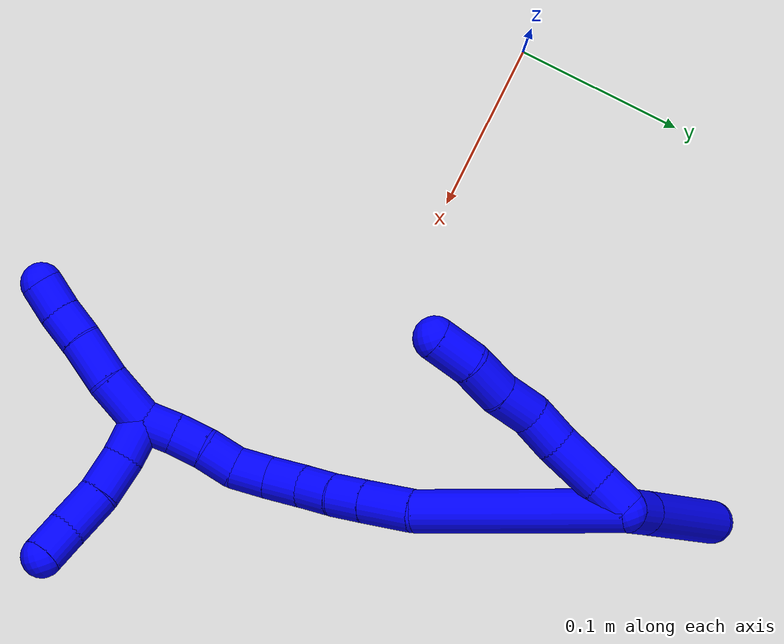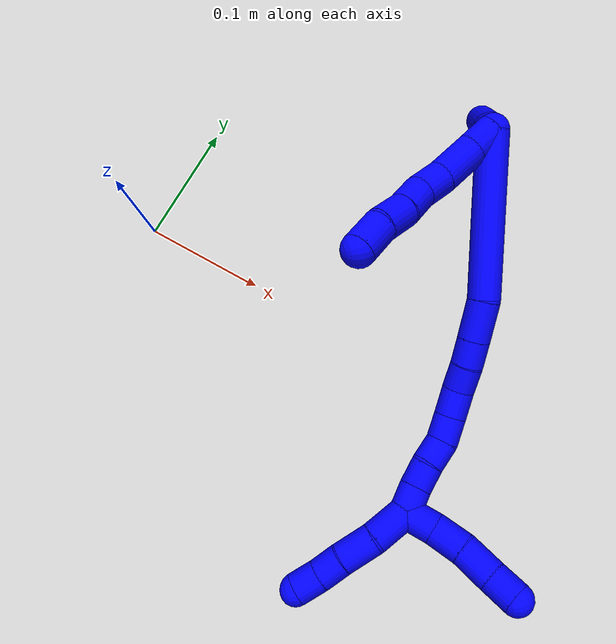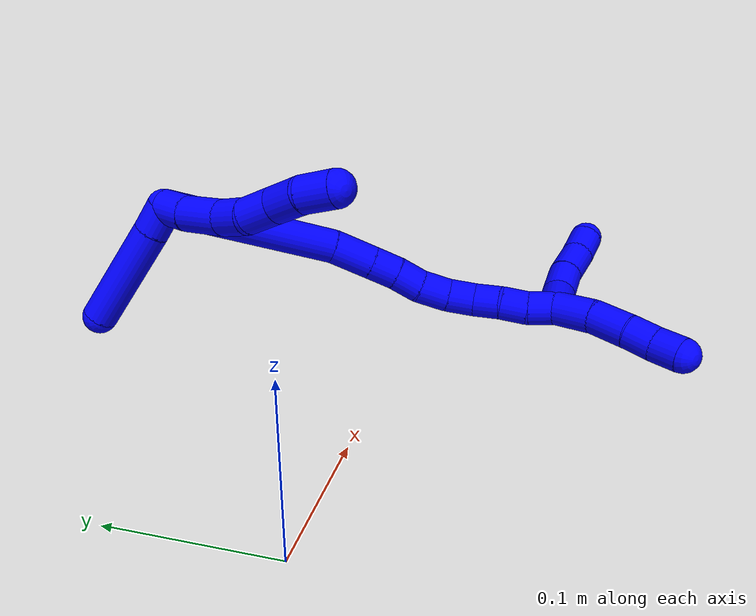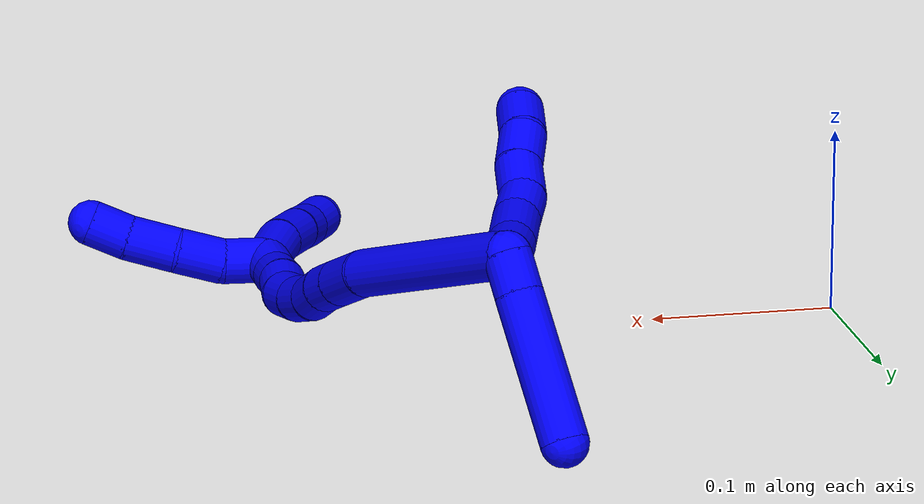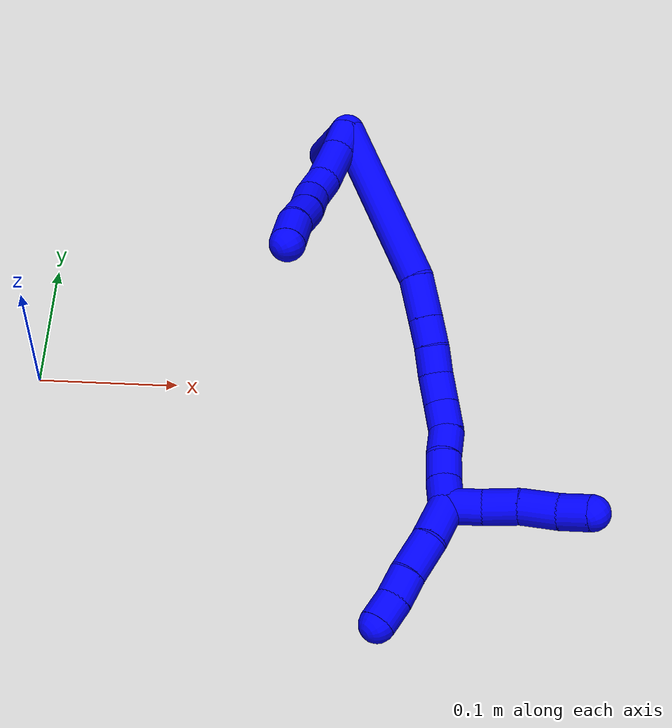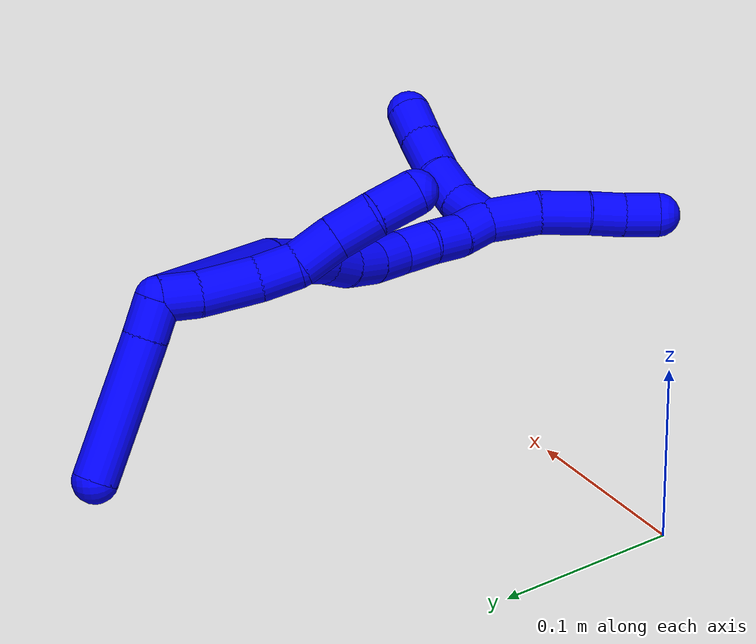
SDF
<sdf version="1.7">
 <world name="default">
  <model name="1">
   <static>0</static>
   <link name="1">
    <collision name="collision-cylinder-e_1_2_8">
     <pose>0.002035 -0.004633 -0.009463 2.68632 0.190786 0.783402</pose>
     <geometry><cylinder><radius>0.0125</radius><length>0.021461</length></cylinder></geometry>
     <surface>
      <friction><ode><mu>1.16</mu><mu2>1.16</mu2><slip1>0</slip1><slip2>0</slip2></ode></friction>
      <contact><ode><kp>1e+06</kp><kd>1</kd><max_vel>0</max_vel><min_depth>0.001</min_depth></ode></contact>
     </surface>
    </collision>
    <visual name="visual-cylinder-e_1_2_8">
     <pose>0.002035 -0.004633 -0.009463 2.68632 0.190786 0.783402</pose>
     <geometry><cylinder><radius>0.0125</radius><length>0.021461</length></cylinder></geometry>
     <material><ambient>0 0 1 1</ambient></material>
    </visual>
    <collision name="collision-cylinder-e_2_8_9">
     <pose>0.004875 -0.016772 -0.033515 2.66639 0.049042 0.201858</pose>
     <geometry><cylinder><radius>0.0125</radius><length>0.032855</length></cylinder></geometry>
     <surface>
      <friction><ode><mu>1.16</mu><mu2>1.16</mu2><slip1>0</slip1><slip2>0</slip2></ode></friction>
      <contact><ode><kp>1e+06</kp><kd>1</kd><max_vel>0</max_vel><min_depth>0.001</min_depth></ode></contact>
     </surface>
    </collision>
    <visual name="visual-cylinder-e_2_8_9">
     <pose>0.004875 -0.016772 -0.033515 2.66639 0.049042 0.201858</pose>
     <geometry><cylinder><radius>0.0125</radius><length>0.032855</length></cylinder></geometry>
     <material><ambient>0 0 1 1</ambient></material>
    </visual>
    <collision name="collision-cylinder-e_3_9_10">
     <pose>0.004526 -0.028588 -0.058263 2.74041 -0.104239 -0.502305</pose>
     <geometry><cylinder><radius>0.0125</radius><length>0.02219</length></cylinder></geometry>
     <surface>
      <friction><ode><mu>1.16</mu><mu2>1.16</mu2><slip1>0</slip1><slip2>0</slip2></ode></friction>
      <contact><ode><kp>1e+06</kp><kd>1</kd><max_vel>0</max_vel><min_depth>0.001</min_depth></ode></contact>
     </surface>
    </collision>
    <visual name="visual-cylinder-e_3_9_10">
     <pose>0.004526 -0.028588 -0.058263 2.74041 -0.104239 -0.502305</pose>
     <geometry><cylinder><radius>0.0125</radius><length>0.02219</length></cylinder></geometry>
     <material><ambient>0 0 1 1</ambient></material>
    </visual>
    <collision name="collision-cylinder-e_4_10_11">
     <pose>-0.000259 -0.039739 -0.077684 2.5054 -0.305439 -0.874527</pose>
     <geometry><cylinder><radius>0.0125</radius><length>0.024147</length></cylinder></geometry>
     <surface>
      <friction><ode><mu>1.16</mu><mu2>1.16</mu2><slip1>0</slip1><slip2>0</slip2></ode></friction>
      <contact><ode><kp>1e+06</kp><kd>1</kd><max_vel>0</max_vel><min_depth>0.001</min_depth></ode></contact>
     </surface>
    </collision>
    <visual name="visual-cylinder-e_4_10_11">
     <pose>-0.000259 -0.039739 -0.077684 2.5054 -0.305439 -0.874527</pose>
     <geometry><cylinder><radius>0.0125</radius><length>0.024147</length></cylinder></geometry>
     <material><ambient>0 0 1 1</ambient></material>
    </visual>
    <collision name="collision-cylinder-e_5_11_12">
     <pose>-0.00755 -0.051567 -0.097384 2.69586 -0.306459 -1.19634</pose>
     <geometry><cylinder><radius>0.0125</radius><length>0.024267</length></cylinder></geometry>
     <surface>
      <friction><ode><mu>1.16</mu><mu2>1.16</mu2><slip1>0</slip1><slip2>0</slip2></ode></friction>
      <contact><ode><kp>1e+06</kp><kd>1</kd><max_vel>0</max_vel><min_depth>0.001</min_depth></ode></contact>
     </surface>
    </collision>
    <visual name="visual-cylinder-e_5_11_12">
     <pose>-0.00755 -0.051567 -0.097384 2.69586 -0.306459 -1.19634</pose>
     <geometry><cylinder><radius>0.0125</radius><length>0.024267</length></cylinder></geometry>
     <material><ambient>0 0 1 1</ambient></material>
    </visual>
    <collision name="collision-cylinder-e_6_12_6">
     <pose>-0.013066 -0.063681 -0.117972 2.52949 -0.148493 -0.462395</pose>
     <geometry><cylinder><radius>0.0125</radius><length>0.025081</length></cylinder></geometry>
     <surface>
      <friction><ode><mu>1.16</mu><mu2>1.16</mu2><slip1>0</slip1><slip2>0</slip2></ode></friction>
      <contact><ode><kp>1e+06</kp><kd>1</kd><max_vel>0</max_vel><min_depth>0.001</min_depth></ode></contact>
     </surface>
    </collision>
    <visual name="visual-cylinder-e_6_12_6">
     <pose>-0.013066 -0.063681 -0.117972 2.52949 -0.148493 -0.462395</pose>
     <geometry><cylinder><radius>0.0125</radius><length>0.025081</length></cylinder></geometry>
     <material><ambient>0 0 1 1</ambient></material>
    </visual>
    <collision name="collision-cylinder-e_1_2_13">
     <pose>0.008269 0.00555 0.003645 -0.98965 0.89422 -0.506369</pose>
     <geometry><cylinder><radius>0.0125</radius><length>0.021211</length></cylinder></geometry>
     <surface>
      <friction><ode><mu>1.16</mu><mu2>1.16</mu2><slip1>0</slip1><slip2>0</slip2></ode></friction>
      <contact><ode><kp>1e+06</kp><kd>1</kd><max_vel>0</max_vel><min_depth>0.001</min_depth></ode></contact>
     </surface>
    </collision>
    <visual name="visual-cylinder-e_1_2_13">
     <pose>0.008269 0.00555 0.003645 -0.98965 0.89422 -0.506369</pose>
     <geometry><cylinder><radius>0.0125</radius><length>0.021211</length></cylinder></geometry>
     <material><ambient>0 0 1 1</ambient></material>
    </visual>
    <collision name="collision-cylinder-e_2_13_5">
     <pose>0.046329 0.032553 0.021582 -0.983149 0.857502 -0.480048</pose>
     <geometry><cylinder><radius>0.0125</radius><length>0.078789</length></cylinder></geometry>
     <surface>
      <friction><ode><mu>1.16</mu><mu2>1.16</mu2><slip1>0</slip1><slip2>0</slip2></ode></friction>
      <contact><ode><kp>1e+06</kp><kd>1</kd><max_vel>0</max_vel><min_depth>0.001</min_depth></ode></contact>
     </surface>
    </collision>
    <visual name="visual-cylinder-e_2_13_5">
     <pose>0.046329 0.032553 0.021582 -0.983149 0.857502 -0.480048</pose>
     <geometry><cylinder><radius>0.0125</radius><length>0.078789</length></cylinder></geometry>
     <material><ambient>0 0 1 1</ambient></material>
    </visual>
    <collision name="collision-cylinder-e_1_2_14">
     <pose>0.024619 -0.054353 -0.016602 1.86724 0.408788 0.546123</pose>
     <geometry><cylinder><radius>0.0125</radius><length>0.12387</length></cylinder></geometry>
     <surface>
      <friction><ode><mu>1.16</mu><mu2>1.16</mu2><slip1>0</slip1><slip2>0</slip2></ode></friction>
      <contact><ode><kp>1e+06</kp><kd>1</kd><max_vel>0</max_vel><min_depth>0.001</min_depth></ode></contact>
     </surface>
    </collision>
    <visual name="visual-cylinder-e_1_2_14">
     <pose>0.024619 -0.054353 -0.016602 1.86724 0.408788 0.546123</pose>
     <geometry><cylinder><radius>0.0125</radius><length>0.12387</length></cylinder></geometry>
     <material><ambient>0 0 1 1</ambient></material>
    </visual>
    <collision name="collision-cylinder-e_2_14_15">
     <pose>0.057219 -0.120459 -0.039432 2.05811 0.540408 0.862694</pose>
     <geometry><cylinder><radius>0.0125</radius><length>0.031024</length></cylinder></geometry>
     <surface>
      <friction><ode><mu>1.16</mu><mu2>1.16</mu2><slip1>0</slip1><slip2>0</slip2></ode></friction>
      <contact><ode><kp>1e+06</kp><kd>1</kd><max_vel>0</max_vel><min_depth>0.001</min_depth></ode></contact>
     </surface>
    </collision>
    <visual name="visual-cylinder-e_2_14_15">
     <pose>0.057219 -0.120459 -0.039432 2.05811 0.540408 0.862694</pose>
     <geometry><cylinder><radius>0.0125</radius><length>0.031024</length></cylinder></geometry>
     <material><ambient>0 0 1 1</ambient></material>
    </visual>
    <collision name="collision-cylinder-e_3_15_16">
     <pose>0.070492 -0.139904 -0.049865 2.07109 0.543174 0.878059</pose>
     <geometry><cylinder><radius>0.0125</radius><length>0.020479</length></cylinder></geometry>
     <surface>
      <friction><ode><mu>1.16</mu><mu2>1.16</mu2><slip1>0</slip1><slip2>0</slip2></ode></friction>
      <contact><ode><kp>1e+06</kp><kd>1</kd><max_vel>0</max_vel><min_depth>0.001</min_depth></ode></contact>
     </surface>
    </collision>
    <visual name="visual-cylinder-e_3_15_16">
     <pose>0.070492 -0.139904 -0.049865 2.07109 0.543174 0.878059</pose>
     <geometry><cylinder><radius>0.0125</radius><length>0.020479</length></cylinder></geometry>
     <material><ambient>0 0 1 1</ambient></material>
    </visual>
    <collision name="collision-cylinder-e_4_16_17">
     <pose>0.08193 -0.154621 -0.05848 2.13131 0.637602 1.07621</pose>
     <geometry><cylinder><radius>0.0125</radius><length>0.020648</length></cylinder></geometry>
     <surface>
      <friction><ode><mu>1.16</mu><mu2>1.16</mu2><slip1>0</slip1><slip2>0</slip2></ode></friction>
      <contact><ode><kp>1e+06</kp><kd>1</kd><max_vel>0</max_vel><min_depth>0.001</min_depth></ode></contact>
     </surface>
    </collision>
    <visual name="visual-cylinder-e_4_16_17">
     <pose>0.08193 -0.154621 -0.05848 2.13131 0.637602 1.07621</pose>
     <geometry><cylinder><radius>0.0125</radius><length>0.020648</length></cylinder></geometry>
     <material><ambient>0 0 1 1</ambient></material>
    </visual>
    <collision name="collision-cylinder-e_5_17_18">
     <pose>0.0927 -0.170193 -0.068293 2.13457 0.42898 0.753154</pose>
     <geometry><cylinder><radius>0.0125</radius><length>0.022237</length></cylinder></geometry>
     <surface>
      <friction><ode><mu>1.16</mu><mu2>1.16</mu2><slip1>0</slip1><slip2>0</slip2></ode></friction>
      <contact><ode><kp>1e+06</kp><kd>1</kd><max_vel>0</max_vel><min_depth>0.001</min_depth></ode></contact>
     </surface>
    </collision>
    <visual name="visual-cylinder-e_5_17_18">
     <pose>0.0927 -0.170193 -0.068293 2.13457 0.42898 0.753154</pose>
     <geometry><cylinder><radius>0.0125</radius><length>0.022237</length></cylinder></geometry>
     <material><ambient>0 0 1 1</ambient></material>
    </visual>
    <collision name="collision-cylinder-e_6_18_19">
     <pose>0.100139 -0.187056 -0.07951 2.18089 0.270564 0.511031</pose>
     <geometry><cylinder><radius>0.0125</radius><length>0.02106</length></cylinder></geometry>
     <surface>
      <friction><ode><mu>1.16</mu><mu2>1.16</mu2><slip1>0</slip1><slip2>0</slip2></ode></friction>
      <contact><ode><kp>1e+06</kp><kd>1</kd><max_vel>0</max_vel><min_depth>0.001</min_depth></ode></contact>
     </surface>
    </collision>
    <visual name="visual-cylinder-e_6_18_19">
     <pose>0.100139 -0.187056 -0.07951 2.18089 0.270564 0.511031</pose>
     <geometry><cylinder><radius>0.0125</radius><length>0.02106</length></cylinder></geometry>
     <material><ambient>0 0 1 1</ambient></material>
    </visual>
    <collision name="collision-cylinder-e_7_19_20">
     <pose>0.103909 -0.201672 -0.093362 2.47687 0.093281 0.268813</pose>
     <geometry><cylinder><radius>0.0125</radius><length>0.020517</length></cylinder></geometry>
     <surface>
      <friction><ode><mu>1.16</mu><mu2>1.16</mu2><slip1>0</slip1><slip2>0</slip2></ode></friction>
      <contact><ode><kp>1e+06</kp><kd>1</kd><max_vel>0</max_vel><min_depth>0.001</min_depth></ode></contact>
     </surface>
    </collision>
    <visual name="visual-cylinder-e_7_19_20">
     <pose>0.103909 -0.201672 -0.093362 2.47687 0.093281 0.268813</pose>
     <geometry><cylinder><radius>0.0125</radius><length>0.020517</length></cylinder></geometry>
     <material><ambient>0 0 1 1</ambient></material>
    </visual>
    <collision name="collision-cylinder-e_8_20_21">
     <pose>0.107209 -0.214868 -0.108334 2.35887 0.235346 0.558036</pose>
     <geometry><cylinder><radius>0.0125</radius><length>0.020109</length></cylinder></geometry>
     <surface>
      <friction><ode><mu>1.16</mu><mu2>1.16</mu2><slip1>0</slip1><slip2>0</slip2></ode></friction>
      <contact><ode><kp>1e+06</kp><kd>1</kd><max_vel>0</max_vel><min_depth>0.001</min_depth></ode></contact>
     </surface>
    </collision>
    <visual name="visual-cylinder-e_8_20_21">
     <pose>0.107209 -0.214868 -0.108334 2.35887 0.235346 0.558036</pose>
     <geometry><cylinder><radius>0.0125</radius><length>0.020109</length></cylinder></geometry>
     <material><ambient>0 0 1 1</ambient></material>
    </visual>
    <collision name="collision-cylinder-e_9_21_1">
     <pose>0.109813 -0.229248 -0.121935 2.2986 0.025942 0.057845</pose>
     <geometry><cylinder><radius>0.0125</radius><length>0.020057</length></cylinder></geometry>
     <surface>
      <friction><ode><mu>1.16</mu><mu2>1.16</mu2><slip1>0</slip1><slip2>0</slip2></ode></friction>
      <contact><ode><kp>1e+06</kp><kd>1</kd><max_vel>0</max_vel><min_depth>0.001</min_depth></ode></contact>
     </surface>
    </collision>
    <visual name="visual-cylinder-e_9_21_1">
     <pose>0.109813 -0.229248 -0.121935 2.2986 0.025942 0.057845</pose>
     <geometry><cylinder><radius>0.0125</radius><length>0.020057</length></cylinder></geometry>
     <material><ambient>0 0 1 1</ambient></material>
    </visual>
    <collision name="collision-cylinder-e_1_1_22">
     <pose>0.109212 -0.245689 -0.12028 0.821961 -0.070352 -0.030669</pose>
     <geometry><cylinder><radius>0.0125</radius><length>0.024515</length></cylinder></geometry>
     <surface>
      <friction><ode><mu>1.16</mu><mu2>1.16</mu2><slip1>0</slip1><slip2>0</slip2></ode></friction>
      <contact><ode><kp>1e+06</kp><kd>1</kd><max_vel>0</max_vel><min_depth>0.001</min_depth></ode></contact>
     </surface>
    </collision>
    <visual name="visual-cylinder-e_1_1_22">
     <pose>0.109212 -0.245689 -0.12028 0.821961 -0.070352 -0.030669</pose>
     <geometry><cylinder><radius>0.0125</radius><length>0.024515</length></cylinder></geometry>
     <material><ambient>0 0 1 1</ambient></material>
    </visual>
    <collision name="collision-cylinder-e_2_22_23">
     <pose>0.10442 -0.26473 -0.10475 0.950407 -0.307103 -0.158932</pose>
     <geometry><cylinder><radius>0.0125</radius><length>0.026004</length></cylinder></geometry>
     <surface>
      <friction><ode><mu>1.16</mu><mu2>1.16</mu2><slip1>0</slip1><slip2>0</slip2></ode></friction>
      <contact><ode><kp>1e+06</kp><kd>1</kd><max_vel>0</max_vel><min_depth>0.001</min_depth></ode></contact>
     </surface>
    </collision>
    <visual name="visual-cylinder-e_2_22_23">
     <pose>0.10442 -0.26473 -0.10475 0.950407 -0.307103 -0.158932</pose>
     <geometry><cylinder><radius>0.0125</radius><length>0.026004</length></cylinder></geometry>
     <material><ambient>0 0 1 1</ambient></material>
    </visual>
    <collision name="collision-cylinder-e_3_23_24">
     <pose>0.097017 -0.286657 -0.091634 1.10788 -0.256536 -0.159216</pose>
     <geometry><cylinder><radius>0.0125</radius><length>0.02737</length></cylinder></geometry>
     <surface>
      <friction><ode><mu>1.16</mu><mu2>1.16</mu2><slip1>0</slip1><slip2>0</slip2></ode></friction>
      <contact><ode><kp>1e+06</kp><kd>1</kd><max_vel>0</max_vel><min_depth>0.001</min_depth></ode></contact>
     </surface>
    </collision>
    <visual name="visual-cylinder-e_3_23_24">
     <pose>0.097017 -0.286657 -0.091634 1.10788 -0.256536 -0.159216</pose>
     <geometry><cylinder><radius>0.0125</radius><length>0.02737</length></cylinder></geometry>
     <material><ambient>0 0 1 1</ambient></material>
    </visual>
    <collision name="collision-cylinder-e_4_24_4">
     <pose>0.08925 -0.307631 -0.081203 1.11111 -0.39893 -0.249676</pose>
     <geometry><cylinder><radius>0.0125</radius><length>0.022112</length></cylinder></geometry>
     <surface>
      <friction><ode><mu>1.16</mu><mu2>1.16</mu2><slip1>0</slip1><slip2>0</slip2></ode></friction>
      <contact><ode><kp>1e+06</kp><kd>1</kd><max_vel>0</max_vel><min_depth>0.001</min_depth></ode></contact>
     </surface>
    </collision>
    <visual name="visual-cylinder-e_4_24_4">
     <pose>0.08925 -0.307631 -0.081203 1.11111 -0.39893 -0.249676</pose>
     <geometry><cylinder><radius>0.0125</radius><length>0.022112</length></cylinder></geometry>
     <material><ambient>0 0 1 1</ambient></material>
    </visual>
    <collision name="collision-cylinder-e_1_1_25">
     <pose>0.111312 -0.242227 -0.142977 2.77648 0.0803 0.428524</pose>
     <geometry><cylinder><radius>0.0125</radius><length>0.030874</length></cylinder></geometry>
     <surface>
      <friction><ode><mu>1.16</mu><mu2>1.16</mu2><slip1>0</slip1><slip2>0</slip2></ode></friction>
      <contact><ode><kp>1e+06</kp><kd>1</kd><max_vel>0</max_vel><min_depth>0.001</min_depth></ode></contact>
     </surface>
    </collision>
    <visual name="visual-cylinder-e_1_1_25">
     <pose>0.111312 -0.242227 -0.142977 2.77648 0.0803 0.428524</pose>
     <geometry><cylinder><radius>0.0125</radius><length>0.030874</length></cylinder></geometry>
     <material><ambient>0 0 1 1</ambient></material>
    </visual>
    <collision name="collision-cylinder-e_2_25_26">
     <pose>0.115529 -0.251141 -0.170745 2.89162 0.212245 1.40648</pose>
     <geometry><cylinder><radius>0.0125</radius><length>0.028285</length></cylinder></geometry>
     <surface>
      <friction><ode><mu>1.16</mu><mu2>1.16</mu2><slip1>0</slip1><slip2>0</slip2></ode></friction>
      <contact><ode><kp>1e+06</kp><kd>1</kd><max_vel>0</max_vel><min_depth>0.001</min_depth></ode></contact>
     </surface>
    </collision>
    <visual name="visual-cylinder-e_2_25_26">
     <pose>0.115529 -0.251141 -0.170745 2.89162 0.212245 1.40648</pose>
     <geometry><cylinder><radius>0.0125</radius><length>0.028285</length></cylinder></geometry>
     <material><ambient>0 0 1 1</ambient></material>
    </visual>
    <collision name="collision-cylinder-e_3_26_27">
     <pose>0.121505 -0.257607 -0.1935 2.82692 0.29557 1.50724</pose>
     <geometry><cylinder><radius>0.0125</radius><length>0.020578</length></cylinder></geometry>
     <surface>
      <friction><ode><mu>1.16</mu><mu2>1.16</mu2><slip1>0</slip1><slip2>0</slip2></ode></friction>
      <contact><ode><kp>1e+06</kp><kd>1</kd><max_vel>0</max_vel><min_depth>0.001</min_depth></ode></contact>
     </surface>
    </collision>
    <visual name="visual-cylinder-e_3_26_27">
     <pose>0.121505 -0.257607 -0.1935 2.82692 0.29557 1.50724</pose>
     <geometry><cylinder><radius>0.0125</radius><length>0.020578</length></cylinder></geometry>
     <material><ambient>0 0 1 1</ambient></material>
    </visual>
    <collision name="collision-cylinder-e_4_27_3">
     <pose>0.126228 -0.262865 -0.212595 2.91831 0.171185 1.3065</pose>
     <geometry><cylinder><radius>0.0125</radius><length>0.020264</length></cylinder></geometry>
     <surface>
      <friction><ode><mu>1.16</mu><mu2>1.16</mu2><slip1>0</slip1><slip2>0</slip2></ode></friction>
      <contact><ode><kp>1e+06</kp><kd>1</kd><max_vel>0</max_vel><min_depth>0.001</min_depth></ode></contact>
     </surface>
    </collision>
    <visual name="visual-cylinder-e_4_27_3">
     <pose>0.126228 -0.262865 -0.212595 2.91831 0.171185 1.3065</pose>
     <geometry><cylinder><radius>0.0125</radius><length>0.020264</length></cylinder></geometry>
     <material><ambient>0 0 1 1</ambient></material>
    </visual>
    <collision name="collision-sphere-3">
     <pose>0.127954 -0.265075 -0.222331 0 -0 0</pose>
     <geometry><sphere><radius>0.0125</radius></sphere></geometry>
     <surface>
      <friction><ode><mu>1.16</mu><mu2>1.16</mu2><slip1>0</slip1><slip2>0</slip2></ode></friction>
      <contact><ode><kp>1e+06</kp><kd>1</kd><max_vel>0</max_vel><min_depth>0.001</min_depth></ode></contact>
     </surface>
    </collision>
    <visual name="visual-sphere-3">
     <pose>0.127954 -0.265075 -0.222331 0 -0 0</pose>
     <geometry><sphere><radius>0.0125</radius></sphere></geometry>
     <material><ambient>0 0 1 1</ambient></material>
    </visual>
    <collision name="collision-sphere-27">
     <pose>0.124502 -0.260654 -0.202859 0 -0 0</pose>
     <geometry><sphere><radius>0.0125</radius></sphere></geometry>
     <surface>
      <friction><ode><mu>1.16</mu><mu2>1.16</mu2><slip1>0</slip1><slip2>0</slip2></ode></friction>
      <contact><ode><kp>1e+06</kp><kd>1</kd><max_vel>0</max_vel><min_depth>0.001</min_depth></ode></contact>
     </surface>
    </collision>
    <visual name="visual-sphere-27">
     <pose>0.124502 -0.260654 -0.202859 0 -0 0</pose>
     <geometry><sphere><radius>0.0125</radius></sphere></geometry>
     <material><ambient>0 0 1 1</ambient></material>
    </visual>
    <collision name="collision-sphere-26">
     <pose>0.118508 -0.254561 -0.18414 0 -0 0</pose>
     <geometry><sphere><radius>0.0125</radius></sphere></geometry>
     <surface>
      <friction><ode><mu>1.16</mu><mu2>1.16</mu2><slip1>0</slip1><slip2>0</slip2></ode></friction>
      <contact><ode><kp>1e+06</kp><kd>1</kd><max_vel>0</max_vel><min_depth>0.001</min_depth></ode></contact>
     </surface>
    </collision>
    <visual name="visual-sphere-26">
     <pose>0.118508 -0.254561 -0.18414 0 -0 0</pose>
     <geometry><sphere><radius>0.0125</radius></sphere></geometry>
     <material><ambient>0 0 1 1</ambient></material>
    </visual>
    <collision name="collision-sphere-25">
     <pose>0.11255 -0.247721 -0.15735 0 -0 0</pose>
     <geometry><sphere><radius>0.0125</radius></sphere></geometry>
     <surface>
      <friction><ode><mu>1.16</mu><mu2>1.16</mu2><slip1>0</slip1><slip2>0</slip2></ode></friction>
      <contact><ode><kp>1e+06</kp><kd>1</kd><max_vel>0</max_vel><min_depth>0.001</min_depth></ode></contact>
     </surface>
    </collision>
    <visual name="visual-sphere-25">
     <pose>0.11255 -0.247721 -0.15735 0 -0 0</pose>
     <geometry><sphere><radius>0.0125</radius></sphere></geometry>
     <material><ambient>0 0 1 1</ambient></material>
    </visual>
    <collision name="collision-sphere-4">
     <pose>0.084956 -0.316761 -0.076683 0 -0 0</pose>
     <geometry><sphere><radius>0.0125</radius></sphere></geometry>
     <surface>
      <friction><ode><mu>1.16</mu><mu2>1.16</mu2><slip1>0</slip1><slip2>0</slip2></ode></friction>
      <contact><ode><kp>1e+06</kp><kd>1</kd><max_vel>0</max_vel><min_depth>0.001</min_depth></ode></contact>
     </surface>
    </collision>
    <visual name="visual-sphere-4">
     <pose>0.084956 -0.316761 -0.076683 0 -0 0</pose>
     <geometry><sphere><radius>0.0125</radius></sphere></geometry>
     <material><ambient>0 0 1 1</ambient></material>
    </visual>
    <collision name="collision-sphere-24">
     <pose>0.093545 -0.298501 -0.085723 0 -0 0</pose>
     <geometry><sphere><radius>0.0125</radius></sphere></geometry>
     <surface>
      <friction><ode><mu>1.16</mu><mu2>1.16</mu2><slip1>0</slip1><slip2>0</slip2></ode></friction>
      <contact><ode><kp>1e+06</kp><kd>1</kd><max_vel>0</max_vel><min_depth>0.001</min_depth></ode></contact>
     </surface>
    </collision>
    <visual name="visual-sphere-24">
     <pose>0.093545 -0.298501 -0.085723 0 -0 0</pose>
     <geometry><sphere><radius>0.0125</radius></sphere></geometry>
     <material><ambient>0 0 1 1</ambient></material>
    </visual>
    <collision name="collision-sphere-23">
     <pose>0.100489 -0.274814 -0.097545 0 -0 0</pose>
     <geometry><sphere><radius>0.0125</radius></sphere></geometry>
     <surface>
      <friction><ode><mu>1.16</mu><mu2>1.16</mu2><slip1>0</slip1><slip2>0</slip2></ode></friction>
      <contact><ode><kp>1e+06</kp><kd>1</kd><max_vel>0</max_vel><min_depth>0.001</min_depth></ode></contact>
     </surface>
    </collision>
    <visual name="visual-sphere-23">
     <pose>0.100489 -0.274814 -0.097545 0 -0 0</pose>
     <geometry><sphere><radius>0.0125</radius></sphere></geometry>
     <material><ambient>0 0 1 1</ambient></material>
    </visual>
    <collision name="collision-sphere-22">
     <pose>0.10835 -0.254645 -0.111956 0 -0 0</pose>
     <geometry><sphere><radius>0.0125</radius></sphere></geometry>
     <surface>
      <friction><ode><mu>1.16</mu><mu2>1.16</mu2><slip1>0</slip1><slip2>0</slip2></ode></friction>
      <contact><ode><kp>1e+06</kp><kd>1</kd><max_vel>0</max_vel><min_depth>0.001</min_depth></ode></contact>
     </surface>
    </collision>
    <visual name="visual-sphere-22">
     <pose>0.10835 -0.254645 -0.111956 0 -0 0</pose>
     <geometry><sphere><radius>0.0125</radius></sphere></geometry>
     <material><ambient>0 0 1 1</ambient></material>
    </visual>
    <collision name="collision-sphere-1">
     <pose>0.110074 -0.236733 -0.128604 0 -0 0</pose>
     <geometry><sphere><radius>0.0125</radius></sphere></geometry>
     <surface>
      <friction><ode><mu>1.16</mu><mu2>1.16</mu2><slip1>0</slip1><slip2>0</slip2></ode></friction>
      <contact><ode><kp>1e+06</kp><kd>1</kd><max_vel>0</max_vel><min_depth>0.001</min_depth></ode></contact>
     </surface>
    </collision>
    <visual name="visual-sphere-1">
     <pose>0.110074 -0.236733 -0.128604 0 -0 0</pose>
     <geometry><sphere><radius>0.0125</radius></sphere></geometry>
     <material><ambient>0 0 1 1</ambient></material>
    </visual>
    <collision name="collision-sphere-21">
     <pose>0.109553 -0.221763 -0.115266 0 -0 0</pose>
     <geometry><sphere><radius>0.0125</radius></sphere></geometry>
     <surface>
      <friction><ode><mu>1.16</mu><mu2>1.16</mu2><slip1>0</slip1><slip2>0</slip2></ode></friction>
      <contact><ode><kp>1e+06</kp><kd>1</kd><max_vel>0</max_vel><min_depth>0.001</min_depth></ode></contact>
     </surface>
    </collision>
    <visual name="visual-sphere-21">
     <pose>0.109553 -0.221763 -0.115266 0 -0 0</pose>
     <geometry><sphere><radius>0.0125</radius></sphere></geometry>
     <material><ambient>0 0 1 1</ambient></material>
    </visual>
    <collision name="collision-sphere-12">
     <pose>-0.011211 -0.056554 -0.107821 0 -0 0</pose>
     <geometry><sphere><radius>0.0125</radius></sphere></geometry>
     <surface>
      <friction><ode><mu>1.16</mu><mu2>1.16</mu2><slip1>0</slip1><slip2>0</slip2></ode></friction>
      <contact><ode><kp>1e+06</kp><kd>1</kd><max_vel>0</max_vel><min_depth>0.001</min_depth></ode></contact>
     </surface>
    </collision>
    <visual name="visual-sphere-12">
     <pose>-0.011211 -0.056554 -0.107821 0 -0 0</pose>
     <geometry><sphere><radius>0.0125</radius></sphere></geometry>
     <material><ambient>0 0 1 1</ambient></material>
    </visual>
    <collision name="collision-sphere-11">
     <pose>-0.00389 -0.04658 -0.086946 0 -0 0</pose>
     <geometry><sphere><radius>0.0125</radius></sphere></geometry>
     <surface>
      <friction><ode><mu>1.16</mu><mu2>1.16</mu2><slip1>0</slip1><slip2>0</slip2></ode></friction>
      <contact><ode><kp>1e+06</kp><kd>1</kd><max_vel>0</max_vel><min_depth>0.001</min_depth></ode></contact>
     </surface>
    </collision>
    <visual name="visual-sphere-11">
     <pose>-0.00389 -0.04658 -0.086946 0 -0 0</pose>
     <geometry><sphere><radius>0.0125</radius></sphere></geometry>
     <material><ambient>0 0 1 1</ambient></material>
    </visual>
    <collision name="collision-sphere-10">
     <pose>0.003371 -0.032897 -0.068422 0 -0 0</pose>
     <geometry><sphere><radius>0.0125</radius></sphere></geometry>
     <surface>
      <friction><ode><mu>1.16</mu><mu2>1.16</mu2><slip1>0</slip1><slip2>0</slip2></ode></friction>
      <contact><ode><kp>1e+06</kp><kd>1</kd><max_vel>0</max_vel><min_depth>0.001</min_depth></ode></contact>
     </surface>
    </collision>
    <visual name="visual-sphere-10">
     <pose>0.003371 -0.032897 -0.068422 0 -0 0</pose>
     <geometry><sphere><radius>0.0125</radius></sphere></geometry>
     <material><ambient>0 0 1 1</ambient></material>
    </visual>
    <collision name="collision-sphere-9">
     <pose>0.00568 -0.024279 -0.048105 0 -0 0</pose>
     <geometry><sphere><radius>0.0125</radius></sphere></geometry>
     <surface>
      <friction><ode><mu>1.16</mu><mu2>1.16</mu2><slip1>0</slip1><slip2>0</slip2></ode></friction>
      <contact><ode><kp>1e+06</kp><kd>1</kd><max_vel>0</max_vel><min_depth>0.001</min_depth></ode></contact>
     </surface>
    </collision>
    <visual name="visual-sphere-9">
     <pose>0.00568 -0.024279 -0.048105 0 -0 0</pose>
     <geometry><sphere><radius>0.0125</radius></sphere></geometry>
     <material><ambient>0 0 1 1</ambient></material>
    </visual>
    <collision name="collision-sphere-2">
     <geometry><sphere><radius>0.0125</radius></sphere></geometry>
     <surface>
      <friction><ode><mu>1.16</mu><mu2>1.16</mu2><slip1>0</slip1><slip2>0</slip2></ode></friction>
      <contact><ode><kp>1e+06</kp><kd>1</kd><max_vel>0</max_vel><min_depth>0.001</min_depth></ode></contact>
     </surface>
    </collision>
    <visual name="visual-sphere-2">
     <geometry><sphere><radius>0.0125</radius></sphere></geometry>
     <material><ambient>0 0 1 1</ambient></material>
    </visual>
    <collision name="collision-sphere-19">
     <pose>0.102953 -0.195372 -0.085323 0 -0 0</pose>
     <geometry><sphere><radius>0.0125</radius></sphere></geometry>
     <surface>
      <friction><ode><mu>1.16</mu><mu2>1.16</mu2><slip1>0</slip1><slip2>0</slip2></ode></friction>
      <contact><ode><kp>1e+06</kp><kd>1</kd><max_vel>0</max_vel><min_depth>0.001</min_depth></ode></contact>
     </surface>
    </collision>
    <visual name="visual-sphere-19">
     <pose>0.102953 -0.195372 -0.085323 0 -0 0</pose>
     <geometry><sphere><radius>0.0125</radius></sphere></geometry>
     <material><ambient>0 0 1 1</ambient></material>
    </visual>
    <collision name="collision-sphere-8">
     <pose>0.00407 -0.009265 -0.018925 0 -0 0</pose>
     <geometry><sphere><radius>0.0125</radius></sphere></geometry>
     <surface>
      <friction><ode><mu>1.16</mu><mu2>1.16</mu2><slip1>0</slip1><slip2>0</slip2></ode></friction>
      <contact><ode><kp>1e+06</kp><kd>1</kd><max_vel>0</max_vel><min_depth>0.001</min_depth></ode></contact>
     </surface>
    </collision>
    <visual name="visual-sphere-8">
     <pose>0.00407 -0.009265 -0.018925 0 -0 0</pose>
     <geometry><sphere><radius>0.0125</radius></sphere></geometry>
     <material><ambient>0 0 1 1</ambient></material>
    </visual>
    <collision name="collision-sphere-6">
     <pose>-0.014921 -0.070807 -0.128122 0 -0 0</pose>
     <geometry><sphere><radius>0.0125</radius></sphere></geometry>
     <surface>
      <friction><ode><mu>1.16</mu><mu2>1.16</mu2><slip1>0</slip1><slip2>0</slip2></ode></friction>
      <contact><ode><kp>1e+06</kp><kd>1</kd><max_vel>0</max_vel><min_depth>0.001</min_depth></ode></contact>
     </surface>
    </collision>
    <visual name="visual-sphere-6">
     <pose>-0.014921 -0.070807 -0.128122 0 -0 0</pose>
     <geometry><sphere><radius>0.0125</radius></sphere></geometry>
     <material><ambient>0 0 1 1</ambient></material>
    </visual>
    <collision name="collision-sphere-13">
     <pose>0.016539 0.011101 0.007291 0 -0 0</pose>
     <geometry><sphere><radius>0.0125</radius></sphere></geometry>
     <surface>
      <friction><ode><mu>1.16</mu><mu2>1.16</mu2><slip1>0</slip1><slip2>0</slip2></ode></friction>
      <contact><ode><kp>1e+06</kp><kd>1</kd><max_vel>0</max_vel><min_depth>0.001</min_depth></ode></contact>
     </surface>
    </collision>
    <visual name="visual-sphere-13">
     <pose>0.016539 0.011101 0.007291 0 -0 0</pose>
     <geometry><sphere><radius>0.0125</radius></sphere></geometry>
     <material><ambient>0 0 1 1</ambient></material>
    </visual>
    <collision name="collision-sphere-5">
     <pose>0.07612 0.054006 0.035873 0 -0 0</pose>
     <geometry><sphere><radius>0.0125</radius></sphere></geometry>
     <surface>
      <friction><ode><mu>1.16</mu><mu2>1.16</mu2><slip1>0</slip1><slip2>0</slip2></ode></friction>
      <contact><ode><kp>1e+06</kp><kd>1</kd><max_vel>0</max_vel><min_depth>0.001</min_depth></ode></contact>
     </surface>
    </collision>
    <visual name="visual-sphere-5">
     <pose>0.07612 0.054006 0.035873 0 -0 0</pose>
     <geometry><sphere><radius>0.0125</radius></sphere></geometry>
     <material><ambient>0 0 1 1</ambient></material>
    </visual>
    <collision name="collision-sphere-14">
     <pose>0.049238 -0.108706 -0.033203 0 -0 0</pose>
     <geometry><sphere><radius>0.0125</radius></sphere></geometry>
     <surface>
      <friction><ode><mu>1.16</mu><mu2>1.16</mu2><slip1>0</slip1><slip2>0</slip2></ode></friction>
      <contact><ode><kp>1e+06</kp><kd>1</kd><max_vel>0</max_vel><min_depth>0.001</min_depth></ode></contact>
     </surface>
    </collision>
    <visual name="visual-sphere-14">
     <pose>0.049238 -0.108706 -0.033203 0 -0 0</pose>
     <geometry><sphere><radius>0.0125</radius></sphere></geometry>
     <material><ambient>0 0 1 1</ambient></material>
    </visual>
    <collision name="collision-sphere-15">
     <pose>0.065199 -0.132212 -0.04566 0 -0 0</pose>
     <geometry><sphere><radius>0.0125</radius></sphere></geometry>
     <surface>
      <friction><ode><mu>1.16</mu><mu2>1.16</mu2><slip1>0</slip1><slip2>0</slip2></ode></friction>
      <contact><ode><kp>1e+06</kp><kd>1</kd><max_vel>0</max_vel><min_depth>0.001</min_depth></ode></contact>
     </surface>
    </collision>
    <visual name="visual-sphere-15">
     <pose>0.065199 -0.132212 -0.04566 0 -0 0</pose>
     <geometry><sphere><radius>0.0125</radius></sphere></geometry>
     <material><ambient>0 0 1 1</ambient></material>
    </visual>
    <collision name="collision-sphere-16">
     <pose>0.075784 -0.147595 -0.05407 0 -0 0</pose>
     <geometry><sphere><radius>0.0125</radius></sphere></geometry>
     <surface>
      <friction><ode><mu>1.16</mu><mu2>1.16</mu2><slip1>0</slip1><slip2>0</slip2></ode></friction>
      <contact><ode><kp>1e+06</kp><kd>1</kd><max_vel>0</max_vel><min_depth>0.001</min_depth></ode></contact>
     </surface>
    </collision>
    <visual name="visual-sphere-16">
     <pose>0.075784 -0.147595 -0.05407 0 -0 0</pose>
     <geometry><sphere><radius>0.0125</radius></sphere></geometry>
     <material><ambient>0 0 1 1</ambient></material>
    </visual>
    <collision name="collision-sphere-17">
     <pose>0.088075 -0.161647 -0.06289 0 -0 0</pose>
     <geometry><sphere><radius>0.0125</radius></sphere></geometry>
     <surface>
      <friction><ode><mu>1.16</mu><mu2>1.16</mu2><slip1>0</slip1><slip2>0</slip2></ode></friction>
      <contact><ode><kp>1e+06</kp><kd>1</kd><max_vel>0</max_vel><min_depth>0.001</min_depth></ode></contact>
     </surface>
    </collision>
    <visual name="visual-sphere-17">
     <pose>0.088075 -0.161647 -0.06289 0 -0 0</pose>
     <geometry><sphere><radius>0.0125</radius></sphere></geometry>
     <material><ambient>0 0 1 1</ambient></material>
    </visual>
    <collision name="collision-sphere-18">
     <pose>0.097324 -0.17874 -0.073696 0 -0 0</pose>
     <geometry><sphere><radius>0.0125</radius></sphere></geometry>
     <surface>
      <friction><ode><mu>1.16</mu><mu2>1.16</mu2><slip1>0</slip1><slip2>0</slip2></ode></friction>
      <contact><ode><kp>1e+06</kp><kd>1</kd><max_vel>0</max_vel><min_depth>0.001</min_depth></ode></contact>
     </surface>
    </collision>
    <visual name="visual-sphere-18">
     <pose>0.097324 -0.17874 -0.073696 0 -0 0</pose>
     <geometry><sphere><radius>0.0125</radius></sphere></geometry>
     <material><ambient>0 0 1 1</ambient></material>
    </visual>
    <collision name="collision-sphere-20">
     <pose>0.104864 -0.207973 -0.101401 0 -0 0</pose>
     <geometry><sphere><radius>0.0125</radius></sphere></geometry>
     <surface>
      <friction><ode><mu>1.16</mu><mu2>1.16</mu2><slip1>0</slip1><slip2>0</slip2></ode></friction>
      <contact><ode><kp>1e+06</kp><kd>1</kd><max_vel>0</max_vel><min_depth>0.001</min_depth></ode></contact>
     </surface>
    </collision>
    <visual name="visual-sphere-20">
     <pose>0.104864 -0.207973 -0.101401 0 -0 0</pose>
     <geometry><sphere><radius>0.0125</radius></sphere></geometry>
     <material><ambient>0 0 1 1</ambient></material>
    </visual>
    <inertial>
     <pose>0.058689 -0.12331 -0.06769 0 -0 0</pose>
     <mass>0.75</mass>
     <inertia><ixx>0.000276</ixx><ixy>0</ixy><ixz>0</ixz><iyy>6.3e-05</iyy><iyz>0</iyz><izz>2.3e-05</izz></inertia>
    </inertial>
   </link>
   <pose>0.215676 0.167868 0.094658 -2.72924 1.43177 -1.92028</pose>
  </model>
 </world>
</sdf>
